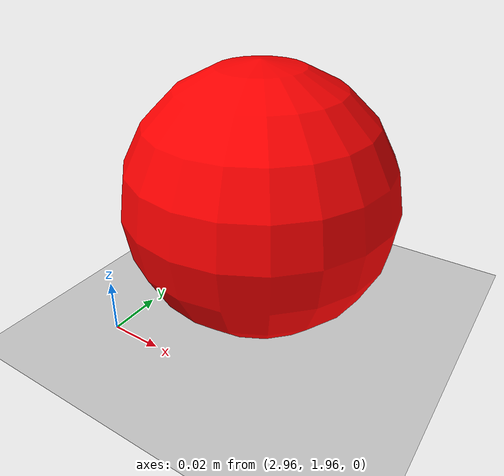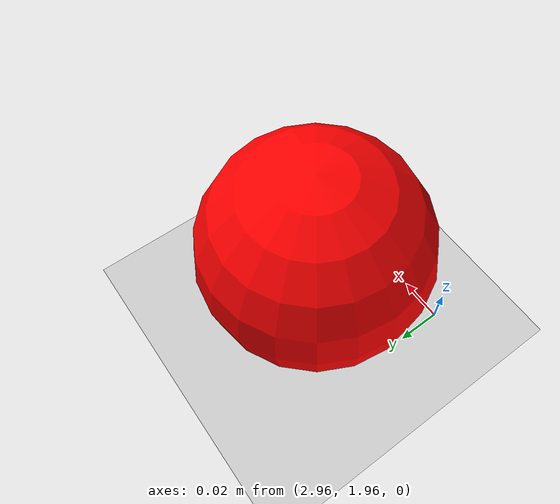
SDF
<?xml version="1.0" ?>
<sdf version="1.10">
  <world name="ball_tracker_world">

    <!-- ================= PLUGINS ================= -->
    <plugin filename="gz-sim-physics-system"
            name="gz::sim::systems::Physics"/>

    <plugin filename="gz-sim-user-commands-system"
            name="gz::sim::systems::UserCommands"/>

    <plugin filename="gz-sim-scene-broadcaster-system"
            name="gz::sim::systems::SceneBroadcaster"/>

    <plugin filename="gz-sim-sensors-system"
            name="gz::sim::systems::Sensors">
      <render_engine>ogre2</render_engine>
    </plugin>

    <plugin filename="gz-sim-imu-system"
            name="gz::sim::systems::Imu"/>

    <plugin filename="gz-sim-magnetometer-system"
            name="gz::sim::systems::Magnetometer"/>

    <plugin filename="gz-sim-navsat-system"
            name="gz::sim::systems::NavSat"/>

    <!-- ============ GEOGRAPHIC COORDINATES ============ -->
    <spherical_coordinates>
      <surface_model>EARTH_WGS84</surface_model>
     <latitude_deg>-25.33057507763572</latitude_deg>
     <longitude_deg>-57.51813474688503</longitude_deg>
      <elevation>80.0</elevation>
      <heading_deg>0</heading_deg>
    </spherical_coordinates>

    <!-- ================= PHYSICS ================= -->
    <physics name="1ms" type="ignored">
      <max_step_size>0.001</max_step_size>
      <real_time_factor>1</real_time_factor>
      <real_time_update_rate>1000</real_time_update_rate>
    </physics>

    <gravity>0 0 -9.8</gravity>

    <!-- ================= SCENE ================= -->
    <scene>
      <ambient>0.4 0.4 0.4 1</ambient>
      <background>0.7 0.7 0.7 1</background>
      <shadows>true</shadows>
    </scene>

    <!-- ================= GROUND ================= -->
    <model name="ground_plane">
      <static>true</static>
      <link name="link">
        <collision name="collision">
          <geometry>
            <plane>
              <normal>0 0 1</normal>
              <size>100 100</size>
            </plane>
          </geometry>
        </collision>
        <visual name="visual">
          <geometry>
            <plane>
              <normal>0 0 1</normal>
              <size>100 100</size>
            </plane>
          </geometry>
          <material>
            <diffuse>0.8 0.8 0.8 1</diffuse>
          </material>
        </visual>
      </link>
    </model>

    <!-- ================= BALL ================= -->

    <!-- BALL-->
    <model name="sphere_A">
      <static>true</static>
      <pose>3 2 0.05 0 0 0</pose>
      <link name="link">
        <collision name="collision">
          <geometry>
            <sphere>
              <radius>0.05</radius>
            </sphere>
          </geometry>
        </collision>
        <visual name="visual">
          <geometry>
            <sphere>
              <radius>0.05</radius>
            </sphere>
          </geometry>
          <material>
            <diffuse>1 0 0 1</diffuse>
          </material>
        </visual>
      </link>
    </model>

    <!-- ================= MARKERS AND SUN ================= -->

    <light name="sun" type="directional">
      <pose>0 0 10 0 0 0</pose>
      <cast_shadows>true</cast_shadows>
      <direction>-0.5 0.1 -0.9</direction>
      <diffuse>0.8 0.8 0.8 1</diffuse>
      <specular>0.2 0.2 0.2 1</specular>
    </light>

  </world>
</sdf>
